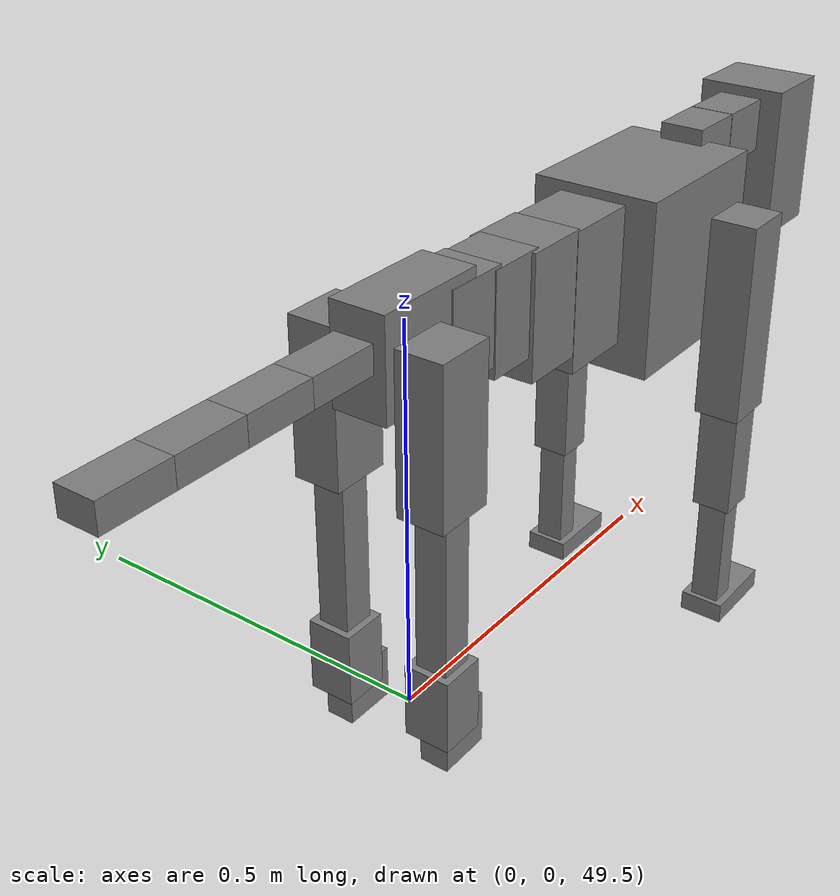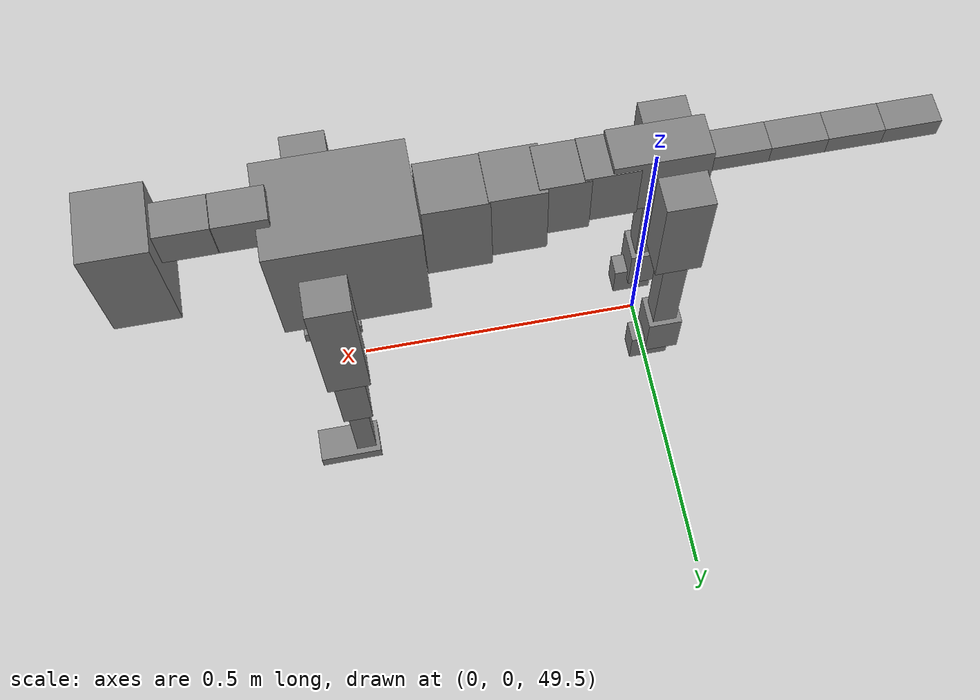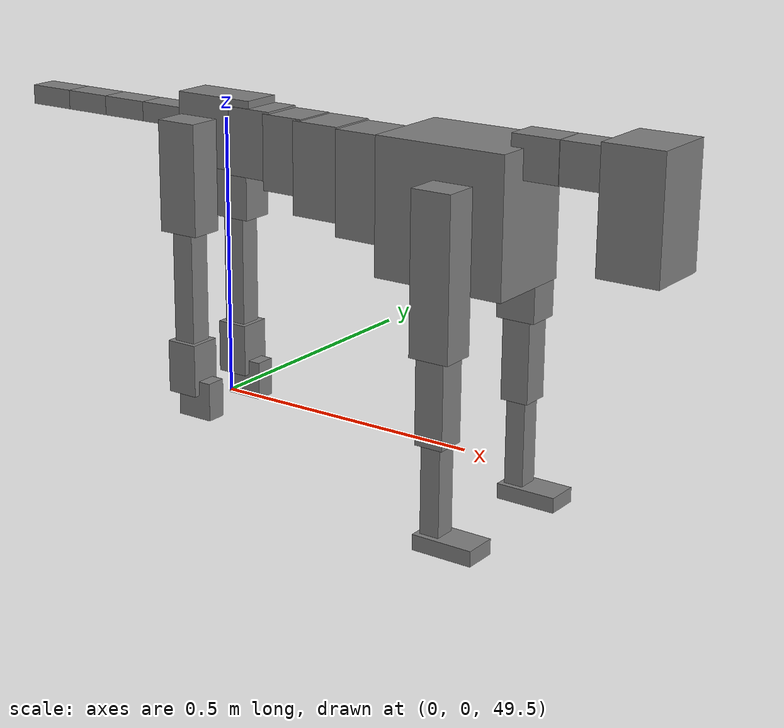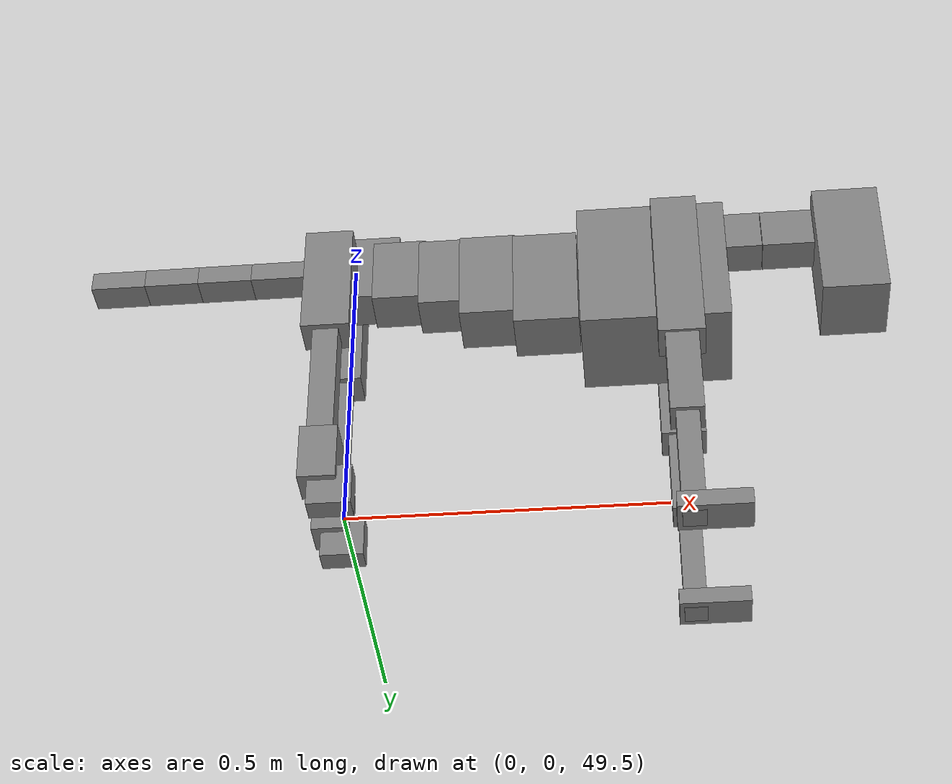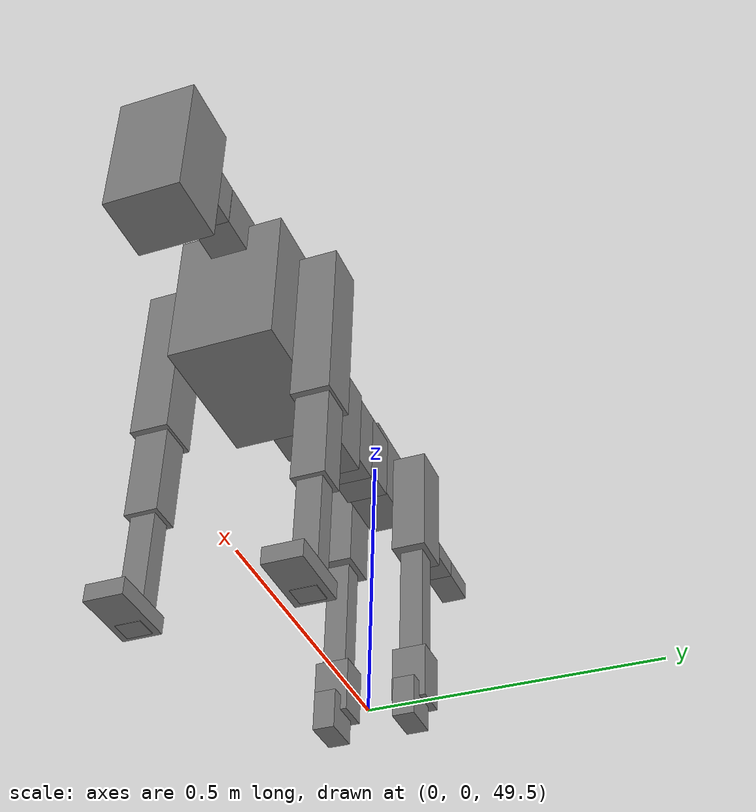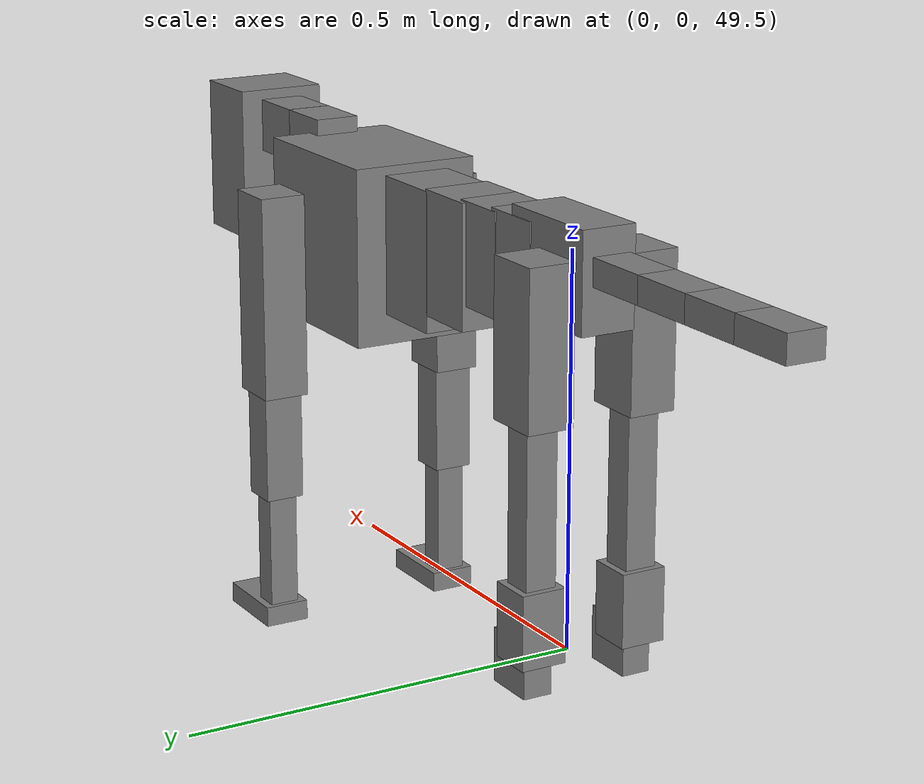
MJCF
<mujoco model="dog">

    <default>
        <joint armature="0.02" stiffness="1" damping="0.2" limited="true"/>
        <geom condim="3" friction="1 0.05 0.05" margin="0.01"/>
        <motor ctrllimited="true" ctrlrange="-1.0 1.0" forcelimited="true" gear="50"/>
    </default>

    <compiler inertiafromgeom="true" angle="radian"/>

    <option timestep="0.016" iterations="50" tolerance="1e-10" solver="Newton" jacobian="dense" cone="pyramidal"/>

    <size nconmax="20000" njmax="60000" nstack="5000000"/>
    <visual>
        <map force="0.1" zfar="30"/>
        <rgba haze="0.15 0.25 0.35 1"/>
        <quality shadowsize="2048"/>
        <global offwidth="800" offheight="800"/>
    </visual>

    <asset>
        <texture type="skybox" builtin="gradient" rgb1="0.3 0.5 0.7" rgb2="0 0 0" width="512" height="512"/>
        <texture name="texplane" type="2d" builtin="checker" rgb1=".2 .3 .4" rgb2=".1 0.15 0.2" width="512" height="512"
                 mark="cross" markrgb=".8 .8 .8"/>
        <texture name="texgeom" type="cube" builtin="flat" mark="cross" width="127" height="1278" rgb1="0.8 0.6 0.4"
                 rgb2="0.8 0.6 0.4" markrgb="1 1 1" random="0.01"/>

        <material name="matplane" reflectance="0.3" texture="texplane" texrepeat="1 1" texuniform="true"/>
        <material name="matgeom" texture="texgeom" texuniform="true" rgba="0.8 0.6 .4 1"/>
    </asset>

    <worldbody>
        <geom name="floor" pos="0 0 0" size="0 0 .25" type="plane" material="matplane" condim="3"/>

        <light directional="false" diffuse=".2 .2 .2" specular="0 0 0" pos="0 0 5" dir="0 0 -1" castshadow="false"/>
        <light mode="targetbodycom" target="torso" directional="false" diffuse=".8 .8 .8" specular="0.3 0.3 0.3"
               pos="0 0 4.0" dir="0 0 -1"/>

        <body name="root" pos="0 0 50">
            <freejoint name="root_1"/>
            <geom type="box" pos="0 0 -0.02" size="0.0774  0.0358  0.063" density="2030"/>

            <body name="spine1" pos="0.054 0 0">
                <joint name="spine1_y" axis="0 1 0" range="0 0.7" limited="true"/>
                <geom type="box" pos="0.02375 0 -0.03" size="0.04375  0.0375  0.05985" density="2030"/>

                <body name="spine2" pos="0.0612 0 0">
                    <joint name="spine2_y" axis="0 1 0" range="-0.15 0.15" limited="true"/>
                    <geom type="box" pos="0.03555  0  -0.04" size="0.04055  0.039  0.06615" density="2030"/>

                    <body name="spine3" pos="0.0730 0 0">
                        <joint name="spine3_y" axis="0 1 0" range="-0.15 0.15" limited="true"/>
                        <geom type="box" pos="0.03555  0  -0.057" size="0.04555  0.0445  0.081" density="2030"/>

                        <body name="spine4" pos="0.0780 0 0">
                            <joint name="spine4_y" axis="0 1 0" range="-0.15 0.15" limited="true"/>
                            <geom type="box" pos="0.05265  0  -0.07" size="0.05265  0.045  0.09135" density="2030"/>

                            <body name="torso" pos="0.1082 0 0">
                                <joint name="torso_y" axis="0 1 0" range="-0.15 0.15" limited="true"/>
                                <geom type="box" pos="0.11925  0  -0.085" size="0.11925  0.085  0.11745"
                                      density="2030"/>

                                <body name="neck1" pos="0.2160  0   0.0180">
                                    <joint name="neck1_y" axis="0 1 0" range="-1.2  -1" limited="true"/>
                                    <geom type="box" pos="0.0423  0  0" size="0.0423  0.03  0.036" density="2325"/>

                                    <body name="neck2" pos="0.0853  0  0">
                                        <joint name="neck2_y" axis="0 1 0" range="0.1  0" limited="true"/>
                                        <geom type="box" pos="0.0423  0  0" size="0.0423  0.03  0.036" density="2325"/>

                                        <body name="head" pos="0.0853  0  0">
                                            <joint name="head_y" axis="0 1 0" range="-0.3  -0.2" limited="true"/>
                                            <geom type="box" pos="0.0531  0  -0.055" size="0.0531  0.06  0.1044"
                                                  density="4030"/>

                                        </body>
                                    </body>
                                </body>

                                <body name="front_shoulder" pos="0.156  0   -0.0480">
                                    <joint name="front_shoulder_y" axis="0 1 0" range="-1 1.5" limited="true"/>
                                    <geom type="box" pos="0 0.13 -0.1096" size="0.0360  0.0308  0.1363" density="1158"/>
                                    <geom type="box" pos="0 -0.13 -0.1096" size="0.0360  0.0308  0.1363"
                                          density="1158"/>

                                    <body name="front_elbow" pos="0  0  -0.2192">
                                        <joint name="front_elbow_y" axis="0 1 0" range="-2 0" limited="true"/>
                                        <geom type="box" pos="0 0.13 -0.0859" size="0.0257  0.0263  0.0859"
                                              density="1081"/>
                                        <geom type="box" pos="0 -0.13 -0.0859" size="0.0257  0.0263  0.0859"
                                              density="1081"/>

                                        <body name="front_wrist" pos="0  0  -0.1717">
                                            <joint name="front_wrist_y" axis="0 1 0" range="-0.2 0" limited="true"/>
                                            <geom type="box" pos="0 0.13 -0.0839" size="0.0177  0.0196  0.0970"
                                                  density="1664"/>
                                            <geom type="box" pos="0 -0.13 -0.0839" size="0.0177  0.0196  0.0970"
                                                  density="1664"/>

                                            <body name="front_finger_end" pos="0  0  -0.1677">
                                                <joint name="front_finger_y" axis="0 1 0" range="-0.4 1"
                                                       limited="true"/>
                                                <geom type="box" pos="0.0301  0.13  0.0015"
                                                      size="0.0552  0.0301  0.0135" density="1515"/>
                                                <geom type="box" pos="0.0301  -0.13  0.0015"
                                                      size="0.0552  0.0301  0.0135" density="1515"/>

                                            </body>

                                        </body>
                                    </body>
                                </body>

                            </body>
                        </body>
                    </body>
                </body>
            </body>

            <body name="back_hip" pos="-0.03 0 -0.018">
                <joint name="back_hip_y" axis="0 1 0" range="-1.5 0.3" limited="true"/>
                <geom type="box" pos="0 0.07 -0.0760" size="0.0388  0.0304  0.0988" density="1154"/>
                <geom type="box" pos="0 -0.07 -0.0760" size="0.0388  0.0304  0.0988" density="1154"/>

                <body name="back_knee" pos="0  0  -0.1521">
                    <joint name="back_knee_y" axis="0 1 0" range="0 2.8" limited="true"/>
                    <geom type="box" pos="0 0.07 -0.1166" size="0.0207  0.0204  0.1321" density="1227"/>
                    <geom type="box" pos="0 -0.07 -0.1166" size="0.0207  0.0204  0.1321" density="1227"/>

                    <body name="back_ankle" pos="0  0  -0.2332">
                        <joint name="back_ankle_y" axis="0 1 0" range="-2.2 0" limited="true"/>
                        <geom type="box" pos="0 0.07 -0.0362" size="0.0295  0.0295  0.0475" density="1284"/>
                        <geom type="box" pos="0 -0.07 -0.0362" size="0.0295  0.0295  0.0475" density="1284"/>

                        <body name="back_toe_end" pos="0  0  -0.0725">
                            <joint name="back_toe_y" axis="0 1 0" range="-0.4 1" limited="true"/>
                            <geom type="box" pos="0.0187  0.07  -0.0196" size="0.0343  0.0187  0.0346" density="1515"/>
                            <geom type="box" pos="0.0187  -0.07  -0.0196" size="0.0343  0.0187  0.0346" density="1515"/>

                        </body>
                    </body>
                </body>
            </body>

            <body name="tail1" pos="-0.074 0 -0.006">
                <joint name="tail1_y" axis="0 1 0" range="-0.2 0.2" limited="true"/>
                <geom type="box" pos="-0.0536  0  0" size="0.045  0.025  0.0175" density="1587"/>

                <body name="tail2" pos="-0.09 0 0">
                    <joint name="tail2_y" axis="0 1 0" range="-0.2 0.2" limited="true"/>
                    <geom type="box" pos="-0.0536  0  0" size="0.045  0.025  0.0175" density="1587"/>

                    <body name="tail3" pos="-0.09 0 0">
                        <joint name="tail3_y" axis="0 1 0" range="-0.2 0.2" limited="true"/>
                        <geom type="box" pos="-0.0536  0  0" size="0.045  0.025  0.0175" density="1587"/>

                        <body name="tail4" pos="-0.09 0 0">
                            <joint name="tail4_y" axis="0 1 0" range="-0.2 0.2" limited="true"/>
                            <geom type="box" pos="-0.0536  0  0" size="0.045  0.025  0.0175" density="1587"/>

                        </body>
                    </body>
                </body>
            </body>
        </body>
    </worldbody>

    <actuator>
        <motor joint="spine1_y" forcerange="-150 150     "/>
        <motor joint="spine2_y" forcerange="-150 150     "/>
        <motor joint="spine3_y" forcerange="-150 150     "/>
        <motor joint="spine4_y" forcerange="-150 150     "/>
        <motor joint="torso_y" forcerange="-150 150     "/>
        <motor joint="neck1_y" forcerange="-100 100       "/>
        <motor joint="neck2_y" forcerange="-100 100       "/>
        <motor joint="head_y" forcerange="-150 150       "/>
        <motor joint="front_shoulder_y" forcerange="-137.56 167.77"/>
        <motor joint="front_elbow_y" forcerange="-113.41 177.52"/>
        <motor joint="front_wrist_y" forcerange="-104.83 52.37"/>
        <motor joint="front_finger_y" forcerange="-89.48 31.13"/>
        <motor joint="back_hip_y" forcerange="-395.19 210.33"/>
        <motor joint="back_knee_y" forcerange="-206.50 290.62"/>
        <motor joint="back_angle_y" forcerange="-185.66 186.65"/>
        <motor joint="back_toe_y" forcerange="-33.82 35.99"/>
        <motor joint="tail1_y" forcerange="-50 50     "/>
        <motor joint="tail2_y" forcerange="-50 50     "/>
        <motor joint="tail3_y" forcerange="-50 50     "/>
        <motor joint="tail4_y" forcerange="-50 50     "/>
    </actuator>
</mujoco>
